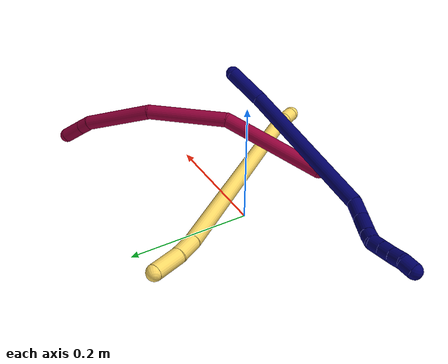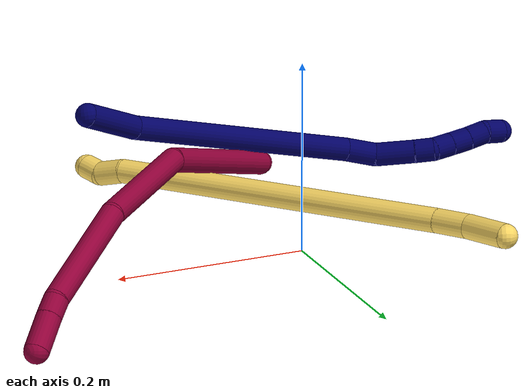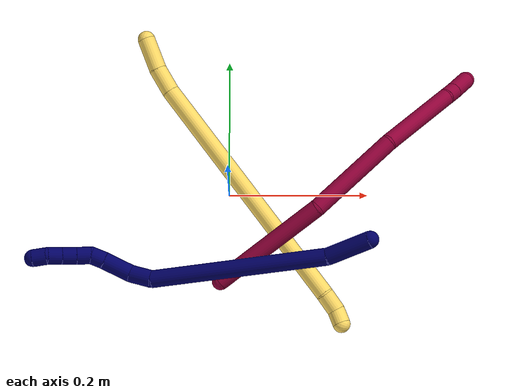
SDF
<sdf version="1.7">
 <world name="default">
  <model name="5">
   <static>0</static>
   <link name="5">
    <collision name="collision-cylinder-e_1_1_4">
     <pose>-0.002075 0.007858 -0.007114 -2.30657 -0.19329 0.430334</pose>
     <geometry><cylinder><radius>0.0125</radius><length>0.021601</length></cylinder></geometry>
     <surface>
      <friction><ode><mu>1.16</mu><mu2>1.16</mu2><slip1>0</slip1><slip2>0</slip2></ode></friction>
      <contact><ode><kp>1e+06</kp><kd>1</kd><max_vel>0</max_vel><min_depth>0.001</min_depth></ode></contact>
     </surface>
    </collision>
    <visual name="visual-cylinder-e_1_1_4">
     <pose>-0.002075 0.007858 -0.007114 -2.30657 -0.19329 0.430334</pose>
     <geometry><cylinder><radius>0.0125</radius><length>0.021601</length></cylinder></geometry>
     <material><ambient>1 0.858824 0.4 1</ambient></material>
    </visual>
    <collision name="collision-cylinder-e_2_4_5">
     <pose>-0.010553 0.021043 -0.026123 -2.72051 -0.456652 1.65444</pose>
     <geometry><cylinder><radius>0.0125</radius><length>0.029044</length></cylinder></geometry>
     <surface>
      <friction><ode><mu>1.16</mu><mu2>1.16</mu2><slip1>0</slip1><slip2>0</slip2></ode></friction>
      <contact><ode><kp>1e+06</kp><kd>1</kd><max_vel>0</max_vel><min_depth>0.001</min_depth></ode></contact>
     </surface>
    </collision>
    <visual name="visual-cylinder-e_2_4_5">
     <pose>-0.010553 0.021043 -0.026123 -2.72051 -0.456652 1.65444</pose>
     <geometry><cylinder><radius>0.0125</radius><length>0.029044</length></cylinder></geometry>
     <material><ambient>1 0.858824 0.4 1</ambient></material>
    </visual>
    <collision name="collision-cylinder-e_3_5_6">
     <pose>-0.059544 0.113026 -0.192781 -2.63116 -0.235643 0.851828</pose>
     <geometry><cylinder><radius>0.0125</radius><length>0.364824</length></cylinder></geometry>
     <surface>
      <friction><ode><mu>1.16</mu><mu2>1.16</mu2><slip1>0</slip1><slip2>0</slip2></ode></friction>
      <contact><ode><kp>1e+06</kp><kd>1</kd><max_vel>0</max_vel><min_depth>0.001</min_depth></ode></contact>
     </surface>
    </collision>
    <visual name="visual-cylinder-e_3_5_6">
     <pose>-0.059544 0.113026 -0.192781 -2.63116 -0.235643 0.851828</pose>
     <geometry><cylinder><radius>0.0125</radius><length>0.364824</length></cylinder></geometry>
     <material><ambient>1 0.858824 0.4 1</ambient></material>
    </visual>
    <collision name="collision-cylinder-e_4_6_7">
     <pose>-0.107573 0.209909 -0.361999 -2.52593 -0.298134 0.882582</pose>
     <geometry><cylinder><radius>0.0125</radius><length>0.037051</length></cylinder></geometry>
     <surface>
      <friction><ode><mu>1.16</mu><mu2>1.16</mu2><slip1>0</slip1><slip2>0</slip2></ode></friction>
      <contact><ode><kp>1e+06</kp><kd>1</kd><max_vel>0</max_vel><min_depth>0.001</min_depth></ode></contact>
     </surface>
    </collision>
    <visual name="visual-cylinder-e_4_6_7">
     <pose>-0.107573 0.209909 -0.361999 -2.52593 -0.298134 0.882582</pose>
     <geometry><cylinder><radius>0.0125</radius><length>0.037051</length></cylinder></geometry>
     <material><ambient>1 0.858824 0.4 1</ambient></material>
    </visual>
    <collision name="collision-cylinder-e_5_7_2">
     <pose>-0.121278 0.235655 -0.392406 -2.36985 -0.355561 0.832862</pose>
     <geometry><cylinder><radius>0.0125</radius><length>0.04748</length></cylinder></geometry>
     <surface>
      <friction><ode><mu>1.16</mu><mu2>1.16</mu2><slip1>0</slip1><slip2>0</slip2></ode></friction>
      <contact><ode><kp>1e+06</kp><kd>1</kd><max_vel>0</max_vel><min_depth>0.001</min_depth></ode></contact>
     </surface>
    </collision>
    <visual name="visual-cylinder-e_5_7_2">
     <pose>-0.121278 0.235655 -0.392406 -2.36985 -0.355561 0.832862</pose>
     <geometry><cylinder><radius>0.0125</radius><length>0.04748</length></cylinder></geometry>
     <material><ambient>1 0.858824 0.4 1</ambient></material>
    </visual>
    <collision name="collision-sphere-2">
     <pose>-0.129543 0.251176 -0.408356 0 -0 0</pose>
     <geometry><sphere><radius>0.0125</radius></sphere></geometry>
     <surface>
      <friction><ode><mu>1.16</mu><mu2>1.16</mu2><slip1>0</slip1><slip2>0</slip2></ode></friction>
      <contact><ode><kp>1e+06</kp><kd>1</kd><max_vel>0</max_vel><min_depth>0.001</min_depth></ode></contact>
     </surface>
    </collision>
    <visual name="visual-sphere-2">
     <pose>-0.129543 0.251176 -0.408356 0 -0 0</pose>
     <geometry><sphere><radius>0.0125</radius></sphere></geometry>
     <material><ambient>1 0.858824 0.4 1</ambient></material>
    </visual>
    <collision name="collision-sphere-7">
     <pose>-0.113014 0.220135 -0.376456 0 -0 0</pose>
     <geometry><sphere><radius>0.0125</radius></sphere></geometry>
     <surface>
      <friction><ode><mu>1.16</mu><mu2>1.16</mu2><slip1>0</slip1><slip2>0</slip2></ode></friction>
      <contact><ode><kp>1e+06</kp><kd>1</kd><max_vel>0</max_vel><min_depth>0.001</min_depth></ode></contact>
     </surface>
    </collision>
    <visual name="visual-sphere-7">
     <pose>-0.113014 0.220135 -0.376456 0 -0 0</pose>
     <geometry><sphere><radius>0.0125</radius></sphere></geometry>
     <material><ambient>1 0.858824 0.4 1</ambient></material>
    </visual>
    <collision name="collision-sphere-6">
     <pose>-0.102131 0.199682 -0.347542 0 -0 0</pose>
     <geometry><sphere><radius>0.0125</radius></sphere></geometry>
     <surface>
      <friction><ode><mu>1.16</mu><mu2>1.16</mu2><slip1>0</slip1><slip2>0</slip2></ode></friction>
      <contact><ode><kp>1e+06</kp><kd>1</kd><max_vel>0</max_vel><min_depth>0.001</min_depth></ode></contact>
     </surface>
    </collision>
    <visual name="visual-sphere-6">
     <pose>-0.102131 0.199682 -0.347542 0 -0 0</pose>
     <geometry><sphere><radius>0.0125</radius></sphere></geometry>
     <material><ambient>1 0.858824 0.4 1</ambient></material>
    </visual>
    <collision name="collision-sphere-5">
     <pose>-0.016956 0.02637 -0.038019 0 -0 0</pose>
     <geometry><sphere><radius>0.0125</radius></sphere></geometry>
     <surface>
      <friction><ode><mu>1.16</mu><mu2>1.16</mu2><slip1>0</slip1><slip2>0</slip2></ode></friction>
      <contact><ode><kp>1e+06</kp><kd>1</kd><max_vel>0</max_vel><min_depth>0.001</min_depth></ode></contact>
     </surface>
    </collision>
    <visual name="visual-sphere-5">
     <pose>-0.016956 0.02637 -0.038019 0 -0 0</pose>
     <geometry><sphere><radius>0.0125</radius></sphere></geometry>
     <material><ambient>1 0.858824 0.4 1</ambient></material>
    </visual>
    <collision name="collision-sphere-1">
     <geometry><sphere><radius>0.0125</radius></sphere></geometry>
     <surface>
      <friction><ode><mu>1.16</mu><mu2>1.16</mu2><slip1>0</slip1><slip2>0</slip2></ode></friction>
      <contact><ode><kp>1e+06</kp><kd>1</kd><max_vel>0</max_vel><min_depth>0.001</min_depth></ode></contact>
     </surface>
    </collision>
    <visual name="visual-sphere-1">
     <geometry><sphere><radius>0.0125</radius></sphere></geometry>
     <material><ambient>1 0.858824 0.4 1</ambient></material>
    </visual>
    <collision name="collision-sphere-4">
     <pose>-0.004149 0.015715 -0.014228 0 -0 0</pose>
     <geometry><sphere><radius>0.0125</radius></sphere></geometry>
     <surface>
      <friction><ode><mu>1.16</mu><mu2>1.16</mu2><slip1>0</slip1><slip2>0</slip2></ode></friction>
      <contact><ode><kp>1e+06</kp><kd>1</kd><max_vel>0</max_vel><min_depth>0.001</min_depth></ode></contact>
     </surface>
    </collision>
    <visual name="visual-sphere-4">
     <pose>-0.004149 0.015715 -0.014228 0 -0 0</pose>
     <geometry><sphere><radius>0.0125</radius></sphere></geometry>
     <material><ambient>1 0.858824 0.4 1</ambient></material>
    </visual>
    <inertial>
     <pose>-0.063636 0.121964 -0.206574 0 -0 0</pose>
     <mass>0.5</mass>
     <inertia>
      <ixx>0.005588</ixx>
      <ixy>0</ixy>
      <ixz>0</ixz>
      <iyy>0.001015</iyy>
      <iyz>0</iyz>
      <izz>-0.001018</izz>
     </inertia>
    </inertial>
   </link>
   <pose>0.15918 -0.195198 0.049867 -1.63376 1.13851 -1.99719</pose>
  </model>
  <model name="7">
   <static>0</static>
   <link name="7">
    <collision name="collision-cylinder-e_1_1_4">
     <pose>-0.030461 0.00777 -0.010502 -2.5046 -1.16565 2.21402</pose>
     <geometry><cylinder><radius>0.0125</radius><length>0.066288</length></cylinder></geometry>
     <surface>
      <friction><ode><mu>1.16</mu><mu2>1.16</mu2><slip1>0</slip1><slip2>0</slip2></ode></friction>
      <contact><ode><kp>1e+06</kp><kd>1</kd><max_vel>0</max_vel><min_depth>0.001</min_depth></ode></contact>
     </surface>
    </collision>
    <visual name="visual-cylinder-e_1_1_4">
     <pose>-0.030461 0.00777 -0.010502 -2.5046 -1.16565 2.21402</pose>
     <geometry><cylinder><radius>0.0125</radius><length>0.066288</length></cylinder></geometry>
     <material><ambient>0.003922 0 0.403922 1</ambient></material>
    </visual>
    <collision name="collision-cylinder-e_2_4_5">
     <pose>-0.168775 0.077087 -0.051576 -2.03183 -1.00349 1.44895</pose>
     <geometry><cylinder><radius>0.0125</radius><length>0.255774</length></cylinder></geometry>
     <surface>
      <friction><ode><mu>1.16</mu><mu2>1.16</mu2><slip1>0</slip1><slip2>0</slip2></ode></friction>
      <contact><ode><kp>1e+06</kp><kd>1</kd><max_vel>0</max_vel><min_depth>0.001</min_depth></ode></contact>
     </surface>
    </collision>
    <visual name="visual-cylinder-e_2_4_5">
     <pose>-0.168775 0.077087 -0.051576 -2.03183 -1.00349 1.44895</pose>
     <geometry><cylinder><radius>0.0125</radius><length>0.255774</length></cylinder></geometry>
     <material><ambient>0.003922 0 0.403922 1</ambient></material>
    </visual>
    <collision name="collision-cylinder-e_3_5_6">
     <pose>-0.286409 0.150731 -0.087409 -1.98091 -0.637967 0.933228</pose>
     <geometry><cylinder><radius>0.0125</radius><length>0.032844</length></cylinder></geometry>
     <surface>
      <friction><ode><mu>1.16</mu><mu2>1.16</mu2><slip1>0</slip1><slip2>0</slip2></ode></friction>
      <contact><ode><kp>1e+06</kp><kd>1</kd><max_vel>0</max_vel><min_depth>0.001</min_depth></ode></contact>
     </surface>
    </collision>
    <visual name="visual-cylinder-e_3_5_6">
     <pose>-0.286409 0.150731 -0.087409 -1.98091 -0.637967 0.933228</pose>
     <geometry><cylinder><radius>0.0125</radius><length>0.032844</length></cylinder></geometry>
     <material><ambient>0.003922 0 0.403922 1</ambient></material>
    </visual>
    <collision name="collision-cylinder-e_4_6_7">
     <pose>-0.304893 0.181756 -0.093942 -1.638 -0.430157 0.459074</pose>
     <geometry><cylinder><radius>0.0125</radius><length>0.041742</length></cylinder></geometry>
     <surface>
      <friction><ode><mu>1.16</mu><mu2>1.16</mu2><slip1>0</slip1><slip2>0</slip2></ode></friction>
      <contact><ode><kp>1e+06</kp><kd>1</kd><max_vel>0</max_vel><min_depth>0.001</min_depth></ode></contact>
     </surface>
    </collision>
    <visual name="visual-cylinder-e_4_6_7">
     <pose>-0.304893 0.181756 -0.093942 -1.638 -0.430157 0.459074</pose>
     <geometry><cylinder><radius>0.0125</radius><length>0.041742</length></cylinder></geometry>
     <material><ambient>0.003922 0 0.403922 1</ambient></material>
    </visual>
    <collision name="collision-cylinder-e_5_7_8">
     <pose>-0.3185 0.209547 -0.095599 -1.61392 -0.504927 0.52619</pose>
     <geometry><cylinder><radius>0.0125</radius><length>0.020275</length></cylinder></geometry>
     <surface>
      <friction><ode><mu>1.16</mu><mu2>1.16</mu2><slip1>0</slip1><slip2>0</slip2></ode></friction>
      <contact><ode><kp>1e+06</kp><kd>1</kd><max_vel>0</max_vel><min_depth>0.001</min_depth></ode></contact>
     </surface>
    </collision>
    <visual name="visual-cylinder-e_5_7_8">
     <pose>-0.3185 0.209547 -0.095599 -1.61392 -0.504927 0.52619</pose>
     <geometry><cylinder><radius>0.0125</radius><length>0.020275</length></cylinder></geometry>
     <material><ambient>0.003922 0 0.403922 1</ambient></material>
    </visual>
    <collision name="collision-cylinder-e_6_8_9">
     <pose>-0.331475 0.224603 -0.094843 -1.38895 -0.908346 0.772409</pose>
     <geometry><cylinder><radius>0.0125</radius><length>0.020472</length></cylinder></geometry>
     <surface>
      <friction><ode><mu>1.16</mu><mu2>1.16</mu2><slip1>0</slip1><slip2>0</slip2></ode></friction>
      <contact><ode><kp>1e+06</kp><kd>1</kd><max_vel>0</max_vel><min_depth>0.001</min_depth></ode></contact>
     </surface>
    </collision>
    <visual name="visual-cylinder-e_6_8_9">
     <pose>-0.331475 0.224603 -0.094843 -1.38895 -0.908346 0.772409</pose>
     <geometry><cylinder><radius>0.0125</radius><length>0.020472</length></cylinder></geometry>
     <material><ambient>0.003922 0 0.403922 1</ambient></material>
    </visual>
    <collision name="collision-cylinder-e_7_9_10">
     <pose>-0.347464 0.237415 -0.092369 -1.37176 -0.864658 0.722201</pose>
     <geometry><cylinder><radius>0.0125</radius><length>0.020815</length></cylinder></geometry>
     <surface>
      <friction><ode><mu>1.16</mu><mu2>1.16</mu2><slip1>0</slip1><slip2>0</slip2></ode></friction>
      <contact><ode><kp>1e+06</kp><kd>1</kd><max_vel>0</max_vel><min_depth>0.001</min_depth></ode></contact>
     </surface>
    </collision>
    <visual name="visual-cylinder-e_7_9_10">
     <pose>-0.347464 0.237415 -0.092369 -1.37176 -0.864658 0.722201</pose>
     <geometry><cylinder><radius>0.0125</radius><length>0.020815</length></cylinder></geometry>
     <material><ambient>0.003922 0 0.403922 1</ambient></material>
    </visual>
    <collision name="collision-cylinder-e_8_10_11">
     <pose>-0.363077 0.250762 -0.089081 -1.28837 -0.832271 0.640978</pose>
     <geometry><cylinder><radius>0.0125</radius><length>0.020811</length></cylinder></geometry>
     <surface>
      <friction><ode><mu>1.16</mu><mu2>1.16</mu2><slip1>0</slip1><slip2>0</slip2></ode></friction>
      <contact><ode><kp>1e+06</kp><kd>1</kd><max_vel>0</max_vel><min_depth>0.001</min_depth></ode></contact>
     </surface>
    </collision>
    <visual name="visual-cylinder-e_8_10_11">
     <pose>-0.363077 0.250762 -0.089081 -1.28837 -0.832271 0.640978</pose>
     <geometry><cylinder><radius>0.0125</radius><length>0.020811</length></cylinder></geometry>
     <material><ambient>0.003922 0 0.403922 1</ambient></material>
    </visual>
    <collision name="collision-cylinder-e_9_11_2">
     <pose>-0.379864 0.262616 -0.088175 -1.7721 -1.04857 1.2324</pose>
     <geometry><cylinder><radius>0.0125</radius><length>0.02098</length></cylinder></geometry>
     <surface>
      <friction><ode><mu>1.16</mu><mu2>1.16</mu2><slip1>0</slip1><slip2>0</slip2></ode></friction>
      <contact><ode><kp>1e+06</kp><kd>1</kd><max_vel>0</max_vel><min_depth>0.001</min_depth></ode></contact>
     </surface>
    </collision>
    <visual name="visual-cylinder-e_9_11_2">
     <pose>-0.379864 0.262616 -0.088175 -1.7721 -1.04857 1.2324</pose>
     <geometry><cylinder><radius>0.0125</radius><length>0.02098</length></cylinder></geometry>
     <material><ambient>0.003922 0 0.403922 1</ambient></material>
    </visual>
    <collision name="collision-sphere-2">
     <pose>-0.388956 0.267743 -0.089222 0 -0 0</pose>
     <geometry><sphere><radius>0.0125</radius></sphere></geometry>
     <surface>
      <friction><ode><mu>1.16</mu><mu2>1.16</mu2><slip1>0</slip1><slip2>0</slip2></ode></friction>
      <contact><ode><kp>1e+06</kp><kd>1</kd><max_vel>0</max_vel><min_depth>0.001</min_depth></ode></contact>
     </surface>
    </collision>
    <visual name="visual-sphere-2">
     <pose>-0.388956 0.267743 -0.089222 0 -0 0</pose>
     <geometry><sphere><radius>0.0125</radius></sphere></geometry>
     <material><ambient>0.003922 0 0.403922 1</ambient></material>
    </visual>
    <collision name="collision-sphere-11">
     <pose>-0.370772 0.25749 -0.087129 0 -0 0</pose>
     <geometry><sphere><radius>0.0125</radius></sphere></geometry>
     <surface>
      <friction><ode><mu>1.16</mu><mu2>1.16</mu2><slip1>0</slip1><slip2>0</slip2></ode></friction>
      <contact><ode><kp>1e+06</kp><kd>1</kd><max_vel>0</max_vel><min_depth>0.001</min_depth></ode></contact>
     </surface>
    </collision>
    <visual name="visual-sphere-11">
     <pose>-0.370772 0.25749 -0.087129 0 -0 0</pose>
     <geometry><sphere><radius>0.0125</radius></sphere></geometry>
     <material><ambient>0.003922 0 0.403922 1</ambient></material>
    </visual>
    <collision name="collision-sphere-10">
     <pose>-0.355383 0.244035 -0.091033 0 -0 0</pose>
     <geometry><sphere><radius>0.0125</radius></sphere></geometry>
     <surface>
      <friction><ode><mu>1.16</mu><mu2>1.16</mu2><slip1>0</slip1><slip2>0</slip2></ode></friction>
      <contact><ode><kp>1e+06</kp><kd>1</kd><max_vel>0</max_vel><min_depth>0.001</min_depth></ode></contact>
     </surface>
    </collision>
    <visual name="visual-sphere-10">
     <pose>-0.355383 0.244035 -0.091033 0 -0 0</pose>
     <geometry><sphere><radius>0.0125</radius></sphere></geometry>
     <material><ambient>0.003922 0 0.403922 1</ambient></material>
    </visual>
    <collision name="collision-sphere-9">
     <pose>-0.339545 0.230795 -0.093704 0 -0 0</pose>
     <geometry><sphere><radius>0.0125</radius></sphere></geometry>
     <surface>
      <friction><ode><mu>1.16</mu><mu2>1.16</mu2><slip1>0</slip1><slip2>0</slip2></ode></friction>
      <contact><ode><kp>1e+06</kp><kd>1</kd><max_vel>0</max_vel><min_depth>0.001</min_depth></ode></contact>
     </surface>
    </collision>
    <visual name="visual-sphere-9">
     <pose>-0.339545 0.230795 -0.093704 0 -0 0</pose>
     <geometry><sphere><radius>0.0125</radius></sphere></geometry>
     <material><ambient>0.003922 0 0.403922 1</ambient></material>
    </visual>
    <collision name="collision-sphere-4">
     <pose>-0.060922 0.01554 -0.021003 0 -0 0</pose>
     <geometry><sphere><radius>0.0125</radius></sphere></geometry>
     <surface>
      <friction><ode><mu>1.16</mu><mu2>1.16</mu2><slip1>0</slip1><slip2>0</slip2></ode></friction>
      <contact><ode><kp>1e+06</kp><kd>1</kd><max_vel>0</max_vel><min_depth>0.001</min_depth></ode></contact>
     </surface>
    </collision>
    <visual name="visual-sphere-4">
     <pose>-0.060922 0.01554 -0.021003 0 -0 0</pose>
     <geometry><sphere><radius>0.0125</radius></sphere></geometry>
     <material><ambient>0.003922 0 0.403922 1</ambient></material>
    </visual>
    <collision name="collision-sphere-1">
     <geometry><sphere><radius>0.0125</radius></sphere></geometry>
     <surface>
      <friction><ode><mu>1.16</mu><mu2>1.16</mu2><slip1>0</slip1><slip2>0</slip2></ode></friction>
      <contact><ode><kp>1e+06</kp><kd>1</kd><max_vel>0</max_vel><min_depth>0.001</min_depth></ode></contact>
     </surface>
    </collision>
    <visual name="visual-sphere-1">
     <geometry><sphere><radius>0.0125</radius></sphere></geometry>
     <material><ambient>0.003922 0 0.403922 1</ambient></material>
    </visual>
    <collision name="collision-sphere-8">
     <pose>-0.323404 0.218411 -0.095981 0 -0 0</pose>
     <geometry><sphere><radius>0.0125</radius></sphere></geometry>
     <surface>
      <friction><ode><mu>1.16</mu><mu2>1.16</mu2><slip1>0</slip1><slip2>0</slip2></ode></friction>
      <contact><ode><kp>1e+06</kp><kd>1</kd><max_vel>0</max_vel><min_depth>0.001</min_depth></ode></contact>
     </surface>
    </collision>
    <visual name="visual-sphere-8">
     <pose>-0.323404 0.218411 -0.095981 0 -0 0</pose>
     <geometry><sphere><radius>0.0125</radius></sphere></geometry>
     <material><ambient>0.003922 0 0.403922 1</ambient></material>
    </visual>
    <collision name="collision-sphere-5">
     <pose>-0.276629 0.138633 -0.082149 0 -0 0</pose>
     <geometry><sphere><radius>0.0125</radius></sphere></geometry>
     <surface>
      <friction><ode><mu>1.16</mu><mu2>1.16</mu2><slip1>0</slip1><slip2>0</slip2></ode></friction>
      <contact><ode><kp>1e+06</kp><kd>1</kd><max_vel>0</max_vel><min_depth>0.001</min_depth></ode></contact>
     </surface>
    </collision>
    <visual name="visual-sphere-5">
     <pose>-0.276629 0.138633 -0.082149 0 -0 0</pose>
     <geometry><sphere><radius>0.0125</radius></sphere></geometry>
     <material><ambient>0.003922 0 0.403922 1</ambient></material>
    </visual>
    <collision name="collision-sphere-6">
     <pose>-0.296189 0.162829 -0.092669 0 -0 0</pose>
     <geometry><sphere><radius>0.0125</radius></sphere></geometry>
     <surface>
      <friction><ode><mu>1.16</mu><mu2>1.16</mu2><slip1>0</slip1><slip2>0</slip2></ode></friction>
      <contact><ode><kp>1e+06</kp><kd>1</kd><max_vel>0</max_vel><min_depth>0.001</min_depth></ode></contact>
     </surface>
    </collision>
    <visual name="visual-sphere-6">
     <pose>-0.296189 0.162829 -0.092669 0 -0 0</pose>
     <geometry><sphere><radius>0.0125</radius></sphere></geometry>
     <material><ambient>0.003922 0 0.403922 1</ambient></material>
    </visual>
    <collision name="collision-sphere-7">
     <pose>-0.313596 0.200683 -0.095216 0 -0 0</pose>
     <geometry><sphere><radius>0.0125</radius></sphere></geometry>
     <surface>
      <friction><ode><mu>1.16</mu><mu2>1.16</mu2><slip1>0</slip1><slip2>0</slip2></ode></friction>
      <contact><ode><kp>1e+06</kp><kd>1</kd><max_vel>0</max_vel><min_depth>0.001</min_depth></ode></contact>
     </surface>
    </collision>
    <visual name="visual-sphere-7">
     <pose>-0.313596 0.200683 -0.095216 0 -0 0</pose>
     <geometry><sphere><radius>0.0125</radius></sphere></geometry>
     <material><ambient>0.003922 0 0.403922 1</ambient></material>
    </visual>
    <inertial>
     <pose>-0.206645 0.114572 -0.060373 0 -0 0</pose>
     <mass>0.5</mass>
     <inertia>
      <ixx>0.000834</ixx>
      <ixy>0</ixy>
      <ixz>0</ixz>
      <iyy>0.001796</iyy>
      <iyz>0</iyz>
      <izz>0.000516</izz>
     </inertia>
    </inertial>
   </link>
   <pose>0.195265 -0.0919 0.143597 0.265399 -0.181598 0.660212</pose>
  </model>
  <model name="8">
   <static>0</static>
   <link name="8">
    <collision name="collision-cylinder-e_1_1_4">
     <pose>-0.005431 0.016134 0.08552 -0.186469 -0.06232 0.005829</pose>
     <geometry><cylinder><radius>0.0125</radius><length>0.174396</length></cylinder></geometry>
     <surface>
      <friction><ode><mu>1.16</mu><mu2>1.16</mu2><slip1>0</slip1><slip2>0</slip2></ode></friction>
      <contact><ode><kp>1e+06</kp><kd>1</kd><max_vel>0</max_vel><min_depth>0.001</min_depth></ode></contact>
     </surface>
    </collision>
    <visual name="visual-cylinder-e_1_1_4">
     <pose>-0.005431 0.016134 0.08552 -0.186469 -0.06232 0.005829</pose>
     <geometry><cylinder><radius>0.0125</radius><length>0.174396</length></cylinder></geometry>
     <material><ambient>0.584314 0 0.227451 1</ambient></material>
    </visual>
    <collision name="collision-cylinder-e_2_4_5">
     <pose>0.010235 0.055868 0.233886 -0.359216 0.304477 -0.055699</pose>
     <geometry><cylinder><radius>0.0125</radius><length>0.140735</length></cylinder></geometry>
     <surface>
      <friction><ode><mu>1.16</mu><mu2>1.16</mu2><slip1>0</slip1><slip2>0</slip2></ode></friction>
      <contact><ode><kp>1e+06</kp><kd>1</kd><max_vel>0</max_vel><min_depth>0.001</min_depth></ode></contact>
     </surface>
    </collision>
    <visual name="visual-cylinder-e_2_4_5">
     <pose>0.010235 0.055868 0.233886 -0.359216 0.304477 -0.055699</pose>
     <geometry><cylinder><radius>0.0125</radius><length>0.140735</length></cylinder></geometry>
     <material><ambient>0.584314 0 0.227451 1</ambient></material>
    </visual>
    <collision name="collision-cylinder-e_3_5_6">
     <pose>0.067317 0.098122 0.345059 -0.368401 0.607154 -0.116596</pose>
     <geometry><cylinder><radius>0.0125</radius><length>0.126152</length></cylinder></geometry>
     <surface>
      <friction><ode><mu>1.16</mu><mu2>1.16</mu2><slip1>0</slip1><slip2>0</slip2></ode></friction>
      <contact><ode><kp>1e+06</kp><kd>1</kd><max_vel>0</max_vel><min_depth>0.001</min_depth></ode></contact>
     </surface>
    </collision>
    <visual name="visual-cylinder-e_3_5_6">
     <pose>0.067317 0.098122 0.345059 -0.368401 0.607154 -0.116596</pose>
     <geometry><cylinder><radius>0.0125</radius><length>0.126152</length></cylinder></geometry>
     <material><ambient>0.584314 0 0.227451 1</ambient></material>
    </visual>
    <collision name="collision-cylinder-e_4_6_7">
     <pose>0.111057 0.119759 0.399438 -0.457682 0.854719 -0.211368</pose>
     <geometry><cylinder><radius>0.0125</radius><length>0.020553</length></cylinder></geometry>
     <surface>
      <friction><ode><mu>1.16</mu><mu2>1.16</mu2><slip1>0</slip1><slip2>0</slip2></ode></friction>
      <contact><ode><kp>1e+06</kp><kd>1</kd><max_vel>0</max_vel><min_depth>0.001</min_depth></ode></contact>
     </surface>
    </collision>
    <visual name="visual-cylinder-e_4_6_7">
     <pose>0.111057 0.119759 0.399438 -0.457682 0.854719 -0.211368</pose>
     <geometry><cylinder><radius>0.0125</radius><length>0.020553</length></cylinder></geometry>
     <material><ambient>0.584314 0 0.227451 1</ambient></material>
    </visual>
    <collision name="collision-cylinder-e_5_7_2">
     <pose>0.133168 0.128995 0.416389 -0.521044 0.851852 -0.240725</pose>
     <geometry><cylinder><radius>0.0125</radius><length>0.038164</length></cylinder></geometry>
     <surface>
      <friction><ode><mu>1.16</mu><mu2>1.16</mu2><slip1>0</slip1><slip2>0</slip2></ode></friction>
      <contact><ode><kp>1e+06</kp><kd>1</kd><max_vel>0</max_vel><min_depth>0.001</min_depth></ode></contact>
     </surface>
    </collision>
    <visual name="visual-cylinder-e_5_7_2">
     <pose>0.133168 0.128995 0.416389 -0.521044 0.851852 -0.240725</pose>
     <geometry><cylinder><radius>0.0125</radius><length>0.038164</length></cylinder></geometry>
     <material><ambient>0.584314 0 0.227451 1</ambient></material>
    </visual>
    <collision name="collision-sphere-2">
     <pose>0.147528 0.135251 0.427288 0 -0 0</pose>
     <geometry><sphere><radius>0.0125</radius></sphere></geometry>
     <surface>
      <friction><ode><mu>1.16</mu><mu2>1.16</mu2><slip1>0</slip1><slip2>0</slip2></ode></friction>
      <contact><ode><kp>1e+06</kp><kd>1</kd><max_vel>0</max_vel><min_depth>0.001</min_depth></ode></contact>
     </surface>
    </collision>
    <visual name="visual-sphere-2">
     <pose>0.147528 0.135251 0.427288 0 -0 0</pose>
     <geometry><sphere><radius>0.0125</radius></sphere></geometry>
     <material><ambient>0.584314 0 0.227451 1</ambient></material>
    </visual>
    <collision name="collision-sphere-7">
     <pose>0.118809 0.122739 0.405489 0 -0 0</pose>
     <geometry><sphere><radius>0.0125</radius></sphere></geometry>
     <surface>
      <friction><ode><mu>1.16</mu><mu2>1.16</mu2><slip1>0</slip1><slip2>0</slip2></ode></friction>
      <contact><ode><kp>1e+06</kp><kd>1</kd><max_vel>0</max_vel><min_depth>0.001</min_depth></ode></contact>
     </surface>
    </collision>
    <visual name="visual-sphere-7">
     <pose>0.118809 0.122739 0.405489 0 -0 0</pose>
     <geometry><sphere><radius>0.0125</radius></sphere></geometry>
     <material><ambient>0.584314 0 0.227451 1</ambient></material>
    </visual>
    <collision name="collision-sphere-6">
     <pose>0.103304 0.116778 0.393386 0 -0 0</pose>
     <geometry><sphere><radius>0.0125</radius></sphere></geometry>
     <surface>
      <friction><ode><mu>1.16</mu><mu2>1.16</mu2><slip1>0</slip1><slip2>0</slip2></ode></friction>
      <contact><ode><kp>1e+06</kp><kd>1</kd><max_vel>0</max_vel><min_depth>0.001</min_depth></ode></contact>
     </surface>
    </collision>
    <visual name="visual-sphere-6">
     <pose>0.103304 0.116778 0.393386 0 -0 0</pose>
     <geometry><sphere><radius>0.0125</radius></sphere></geometry>
     <material><ambient>0.584314 0 0.227451 1</ambient></material>
    </visual>
    <collision name="collision-sphere-5">
     <pose>0.03133 0.079467 0.296732 0 -0 0</pose>
     <geometry><sphere><radius>0.0125</radius></sphere></geometry>
     <surface>
      <friction><ode><mu>1.16</mu><mu2>1.16</mu2><slip1>0</slip1><slip2>0</slip2></ode></friction>
      <contact><ode><kp>1e+06</kp><kd>1</kd><max_vel>0</max_vel><min_depth>0.001</min_depth></ode></contact>
     </surface>
    </collision>
    <visual name="visual-sphere-5">
     <pose>0.03133 0.079467 0.296732 0 -0 0</pose>
     <geometry><sphere><radius>0.0125</radius></sphere></geometry>
     <material><ambient>0.584314 0 0.227451 1</ambient></material>
    </visual>
    <collision name="collision-sphere-1">
     <geometry><sphere><radius>0.0125</radius></sphere></geometry>
     <surface>
      <friction><ode><mu>1.16</mu><mu2>1.16</mu2><slip1>0</slip1><slip2>0</slip2></ode></friction>
      <contact><ode><kp>1e+06</kp><kd>1</kd><max_vel>0</max_vel><min_depth>0.001</min_depth></ode></contact>
     </surface>
    </collision>
    <visual name="visual-sphere-1">
     <geometry><sphere><radius>0.0125</radius></sphere></geometry>
     <material><ambient>0.584314 0 0.227451 1</ambient></material>
    </visual>
    <collision name="collision-sphere-4">
     <pose>-0.010861 0.032269 0.17104 0 -0 0</pose>
     <geometry><sphere><radius>0.0125</radius></sphere></geometry>
     <surface>
      <friction><ode><mu>1.16</mu><mu2>1.16</mu2><slip1>0</slip1><slip2>0</slip2></ode></friction>
      <contact><ode><kp>1e+06</kp><kd>1</kd><max_vel>0</max_vel><min_depth>0.001</min_depth></ode></contact>
     </surface>
    </collision>
    <visual name="visual-sphere-4">
     <pose>-0.010861 0.032269 0.17104 0 -0 0</pose>
     <geometry><sphere><radius>0.0125</radius></sphere></geometry>
     <material><ambient>0.584314 0 0.227451 1</ambient></material>
    </visual>
    <inertial>
     <pose>0.032701 0.060878 0.230922 0 -0 0</pose>
     <mass>0.5</mass>
     <inertia>
      <ixx>0.000804</ixx>
      <ixy>0</ixy>
      <ixz>0</ixz>
      <iyy>0.000818</iyy>
      <iyz>0</iyz>
      <izz>-0.00033</izz>
     </inertia>
    </inertial>
   </link>
   <pose>-0.011525 -0.134133 0.049671 -0.019231 1.31506 0.394631</pose>
  </model>
 </world>
</sdf>
